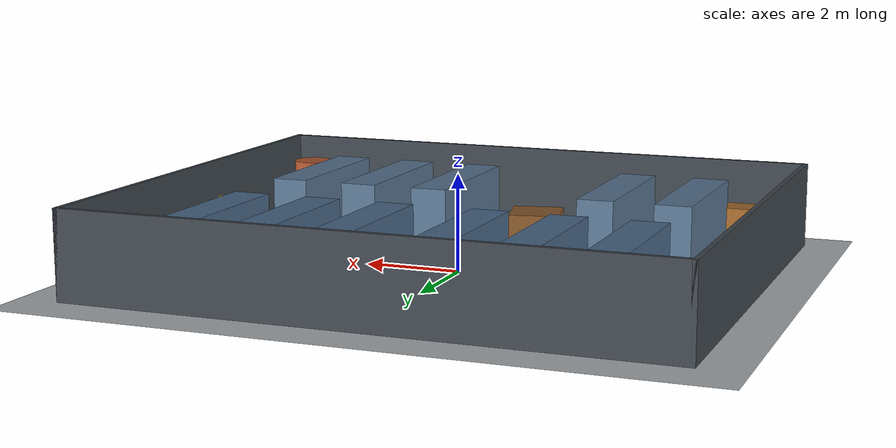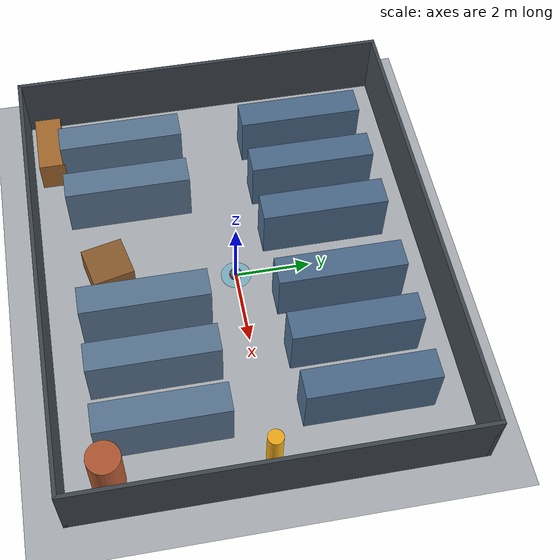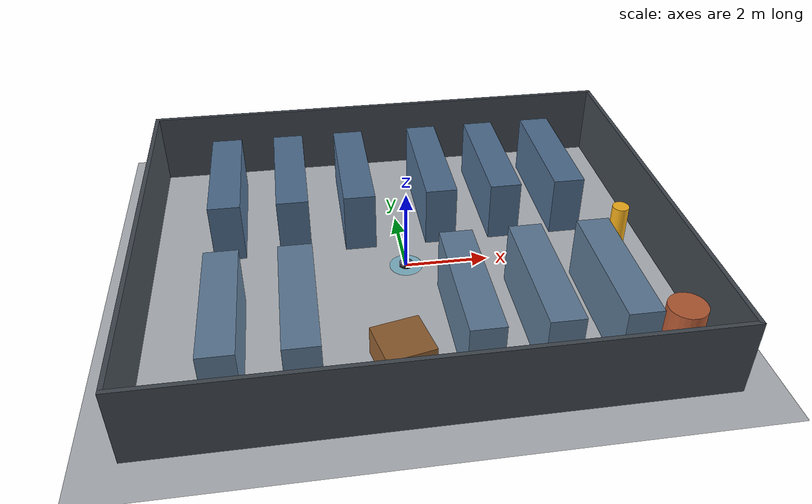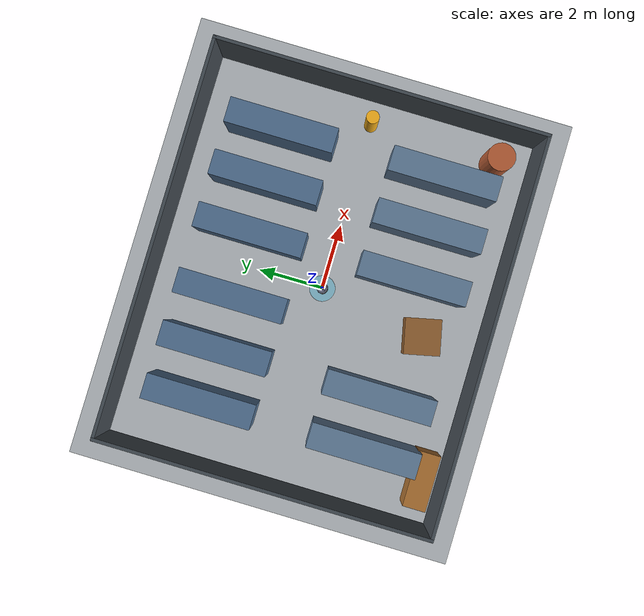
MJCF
<mujoco model="turtlebot4_slam_warehouse">
  <compiler angle="radian"/>
  <option gravity="0 0 -9.81" timestep="0.01"/>
  <include file="turtlebot4.xml"/>
  <worldbody>
    <light pos="0 0 7" dir="0 0 -1" diffuse="0.85 0.85 0.85"/>
    <geom name="floor" type="plane" size="7 6 0.1" rgba="0.68 0.70 0.72 1" friction="1 0.005 0.0001"/>
    <geom name="start_marker" type="cylinder" pos="0 0 0.006" size="0.4 0.005" rgba="0.1 0.75 0.95 0.3" contype="0" conaffinity="0"/>

    <!-- Outer shell: 12 m x 10 m. -->
    <geom name="outer_n" type="box" pos="0 5.05 0.9" size="6.1 0.05 0.9" rgba="0.25 0.28 0.31 1"/>
    <geom name="outer_s" type="box" pos="0 -5.05 0.9" size="6.1 0.05 0.9" rgba="0.25 0.28 0.31 1"/>
    <geom name="outer_e" type="box" pos="6.05 0 0.9" size="0.05 5.1 0.9" rgba="0.25 0.28 0.31 1"/>
    <geom name="outer_w" type="box" pos="-6.05 0 0.9" size="0.05 5.1 0.9" rgba="0.25 0.28 0.31 1"/>

    <!-- Repetitive racks create a deliberately difficult data-association case. -->
    <geom name="rack_w0" type="box" pos="-4.2 2.5 0.75" size="0.38 1.65 0.75" rgba="0.30 0.42 0.55 1"/>
    <geom name="rack_w1" type="box" pos="-2.6 2.5 0.75" size="0.38 1.65 0.75" rgba="0.30 0.42 0.55 1"/>
    <geom name="rack_w2" type="box" pos="-1.0 2.5 0.75" size="0.38 1.65 0.75" rgba="0.30 0.42 0.55 1"/>
    <geom name="rack_e0" type="box" pos="1.0 2.5 0.75" size="0.38 1.65 0.75" rgba="0.30 0.42 0.55 1"/>
    <geom name="rack_e1" type="box" pos="2.6 2.5 0.75" size="0.38 1.65 0.75" rgba="0.30 0.42 0.55 1"/>
    <geom name="rack_e2" type="box" pos="4.2 2.5 0.75" size="0.38 1.65 0.75" rgba="0.30 0.42 0.55 1"/>

    <geom name="rack_sw0" type="box" pos="-4.2 -2.5 0.75" size="0.38 1.65 0.75" rgba="0.36 0.47 0.58 1"/>
    <geom name="rack_sw1" type="box" pos="-2.6 -2.5 0.75" size="0.38 1.65 0.75" rgba="0.36 0.47 0.58 1"/>
    <geom name="rack_se0" type="box" pos="1.0 -2.5 0.75" size="0.38 1.65 0.75" rgba="0.36 0.47 0.58 1"/>
    <geom name="rack_se1" type="box" pos="2.6 -2.5 0.75" size="0.38 1.65 0.75" rgba="0.36 0.47 0.58 1"/>
    <geom name="rack_se2" type="box" pos="4.2 -2.5 0.75" size="0.38 1.65 0.75" rgba="0.36 0.47 0.58 1"/>

    <!-- Missing south-west rack and asymmetric objects break global symmetry. -->
    <geom name="loading_dock" type="box" pos="-4.65 -4.45 0.45" size="0.85 0.35 0.45" rgba="0.65 0.42 0.18 1"/>
    <geom name="pallet_square" type="box" pos="-0.55 -3.30 0.35" size="0.55 0.55 0.35" euler="0 0 0.22" rgba="0.55 0.36 0.18 1"/>
    <geom name="tank_round" type="cylinder" pos="5.15 -3.95 0.7" size="0.42 0.7" rgba="0.70 0.35 0.20 1"/>
    <geom name="safety_column" type="cylinder" pos="5.25 0 0.6" size="0.2 0.6" rgba="0.95 0.68 0.10 1"/>
  </worldbody>
</mujoco>

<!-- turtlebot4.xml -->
<mujoco model="turtlebot4">
  <compiler angle="radian" coordinate="local" meshdir="./assets/meshes" autolimits="true"/>
  <size nstack="300000" nuser_geom="1"/>
  <option gravity="0 0 -9.81" timestep="0.002"/>

  <asset>
    <material name="metal" rgba=".9 .95 .95 1"/>
    <material name="black" rgba="0 0 0 1"/>
    <material name="white" rgba="1 1 1 1"/>
    <material name="gray" rgba="0.371705 0.392426 0.474270 1"/>
    <mesh file="body_visual_processed.stl" scale="0.1 0.1 0.1"/>
    <mesh file="bumper_visual.obj" scale="0.001 0.001 0.001"/>
    <mesh file="top_reduced.stl" scale="0.001 0.001 0.001"/>
    <mesh file="weight_block.stl" scale="0.001 0.001 0.001"/>
    <mesh file="wheel.stl" scale="0.001 0.001 0.001"/>
  </asset>

  <worldbody>
    <body name="base" pos="0 0 0.0392">
      <freejoint name="floating_base_joint"/>

      <!-- Robot geoms use group 1. The custom LiDAR ray caster includes
           group 0 only, preventing self-detection without changing collision. -->
      <geom type="mesh" mesh="body_visual_processed" material="gray" mass="0.269" group="1"/>

      <site name="base_frame" pos="0 0 0" quat="1 0 0 0" size="0.003"/>
      <site name="imu" pos="0.051 -0.035 0.0293"
            quat="1 0 0 0" size="0.003"/>

      <body name="bumper" pos="0 0 0" axisangle="0 0 1 4.71239">
        <geom type="mesh" mesh="bumper_visual" material="black" mass="0.1" group="1"/>
      </body>

      <body name="wheel_l" pos="0.11755 0.002 -0.0032">
        <geom type="mesh" mesh="wheel" group="1"/>
        <joint name="left" damping=".03" actuatorfrcrange="-.4 .4"
               pos="0 0 0" axis="1 0 0"/>
      </body>

      <body name="wheel_r" pos="-0.117 0.002 -0.0032">
        <geom type="mesh" mesh="wheel" group="1"/>
        <joint name="right" damping=".03" actuatorfrcrange="-.4 .4"
               pos="0 0 0" axis="1 0 0"/>
      </body>

      <body name="wheel_f" pos="0 -0.125 -0.026">
        <geom type="sphere" size="0.013 0.013" group="1"/>
        <joint type="ball"/>
      </body>

      <!-- Fixed 2D LiDAR frame. A complete 360-degree scan is generated
           by t2DLiDARSensor with mj_multiRay at one simulation timestamp. -->
      <body name="lidar" pos="0 0 0.08">
        <geom name="lidar_head_geom" type="cylinder" size="0.035 0.015"
              rgba="0.1 0.1 0.1 1" mass="0.01" group="1"/>
        <site name="laser_site" pos="0 0 0" quat="1 0 0 0"
              size="0.003" rgba="0 1 0 0.5"/>
      </body>
    </body>
  </worldbody>

  <tendon>
    <fixed name="forward">
      <joint joint="left" coef=".83"/>
      <joint joint="right" coef=".83"/>
    </fixed>
    <fixed name="turn">
      <joint joint="left" coef="-.1"/>
      <joint joint="right" coef=".1"/>
    </fixed>
  </tendon>

  <actuator>
    <motor name="forward" tendon="forward" ctrlrange="-0.5 0.5"/>
    <motor name="turn" tendon="turn" ctrlrange="-2 2"/>
  </actuator>

  <sensor>
    <!-- IMU -->
    <framequat name="imu_quat" objtype="site" objname="imu"/>
    <gyro name="imu_ang" site="imu"/>
    <accelerometer name="imu_acc" site="imu"/>

    <!-- Base pose and velocity for odometry. DSS keeps MuJoCo coordinates;
         dss_ros2_bridge converts them to ROS REP-103. -->
    <framepos name="base_pos" objtype="site" objname="base_frame"/>
    <framequat name="base_quat" objtype="site" objname="base_frame"/>
    <velocimeter name="base_linvel" site="base_frame"/>
    <gyro name="base_angvel" site="base_frame"/>

    <!-- Wheel joint states -->
    <jointpos name="left_pos" joint="left"/>
    <jointvel name="left_vel" joint="left"/>
    <jointpos name="right_pos" joint="right"/>
    <jointvel name="right_vel" joint="right"/>
  </sensor>
</mujoco>
